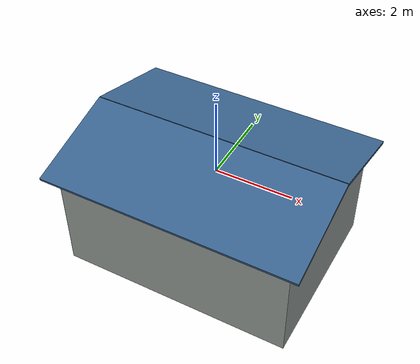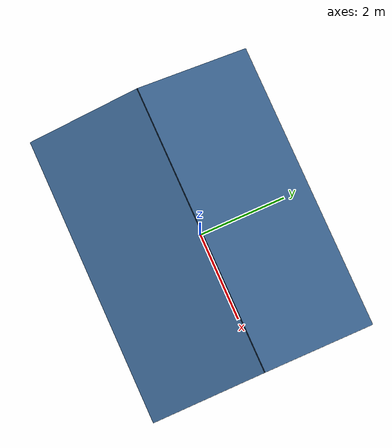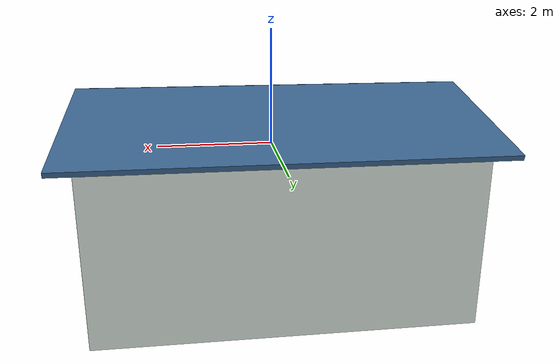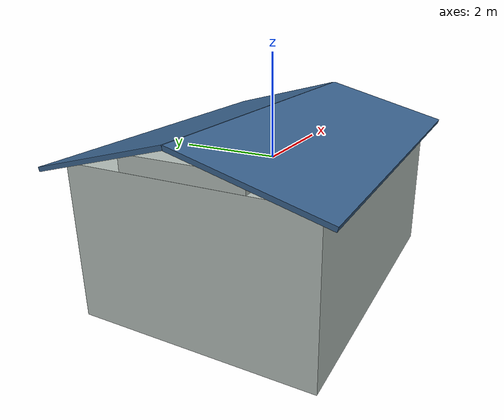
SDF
<?xml version="1.0" ?>
<sdf version="1.9">
  <model name="flooded_house_tin">
    <static>true</static>
    <link name="house">
      <visual name="walls">
        <pose>0 0 -1.050 0 0 0</pose>
        <geometry><box><size>6.0 4.5 2.9</size></box></geometry>
        <material><ambient>0.7 0.74 0.72 1</ambient><diffuse>0.7 0.74 0.72 1</diffuse><specular>0.1 0.1 0.1 1</specular></material>
      </visual>
      <visual name="gable">
        <pose>0 0 0.551 0 0 0</pose>
        <geometry><box><size>6.0 2.25 0.301</size></box></geometry>
        <material><ambient>0.7 0.74 0.72 1</ambient><diffuse>0.7 0.74 0.72 1</diffuse><specular>0.1 0.1 0.1 1</specular></material>
      </visual>
      <visual name="roof_north">
        <pose>0 1.275 0.661 -0.2618 0 0</pose>
        <geometry><box><size>6.6 2.640 0.08</size></box></geometry>
        <material><ambient>0.22 0.38 0.55 1</ambient><diffuse>0.22 0.38 0.55 1</diffuse><specular>0.1 0.1 0.1 1</specular></material>
      </visual>
      <visual name="roof_south">
        <pose>0 -1.275 0.661 0.2618 0 0</pose>
        <geometry><box><size>6.6 2.640 0.08</size></box></geometry>
        <material><ambient>0.22 0.38 0.55 1</ambient><diffuse>0.22 0.38 0.55 1</diffuse><specular>0.1 0.1 0.1 1</specular></material>
      </visual>
      <collision name="walls">
        <pose>0 0 -1.050 0 0 0</pose>
        <geometry><box><size>6.0 4.5 2.9</size></box></geometry>
      </collision>
    </link>
  </model>
</sdf>
